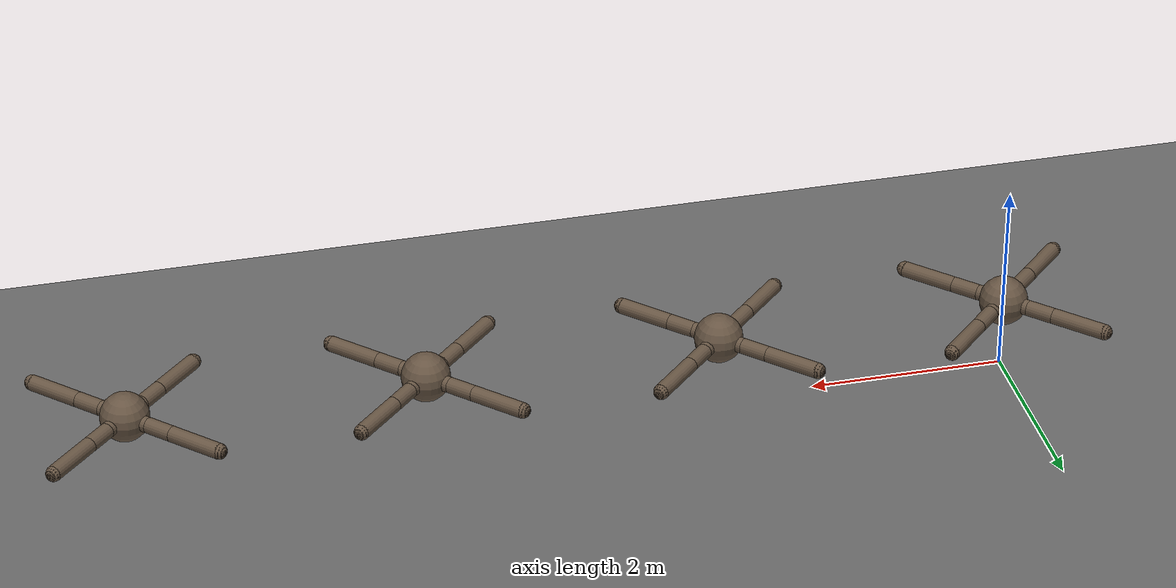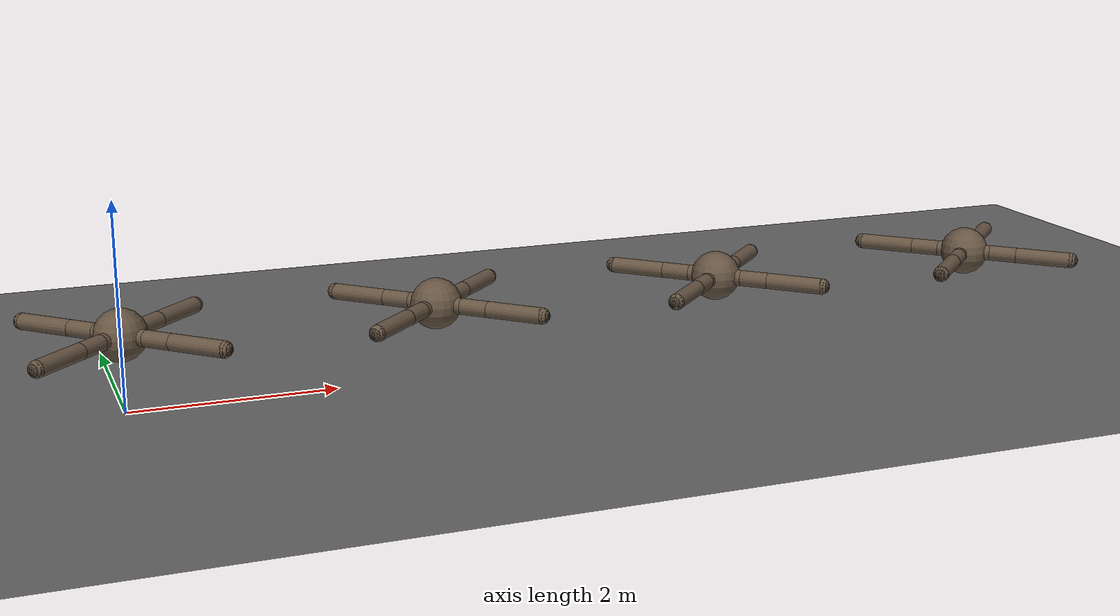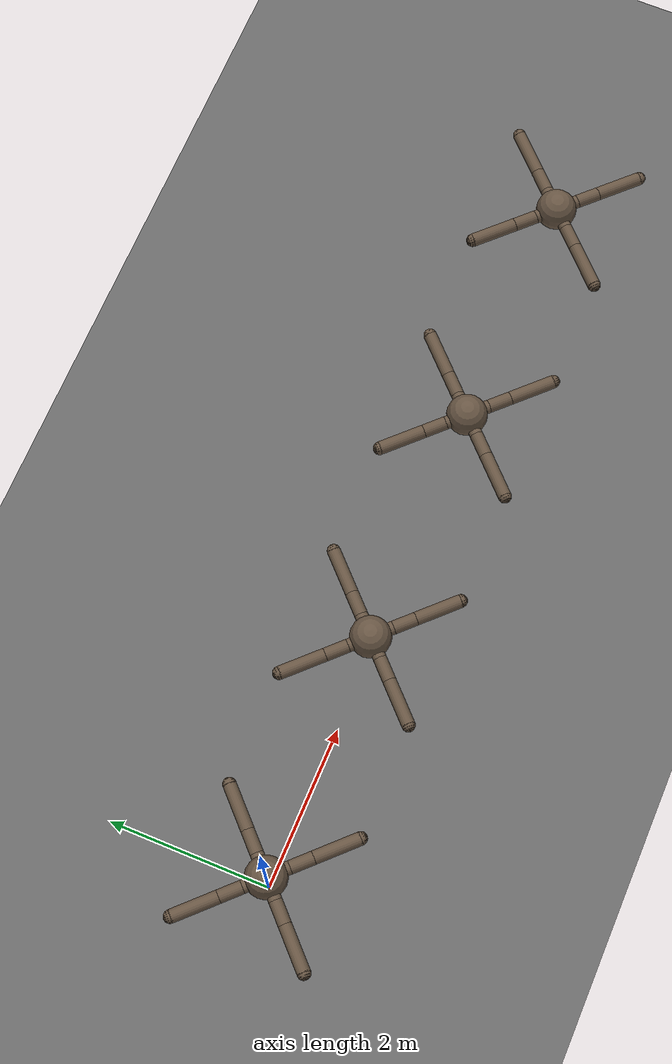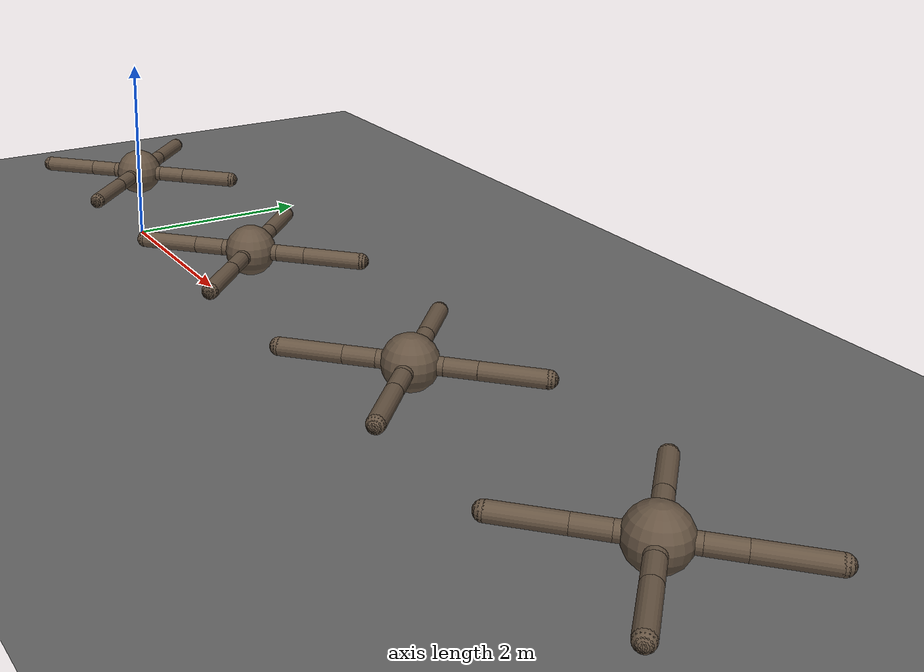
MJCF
<mujoco model="ant">
  <compiler angle="degree" coordinate="local" inertiafromgeom="true" />
  <option timestep="0.03" iterations="4" />
  <custom>

    <numeric data="0.0 0.0 0.55 1.0 0.0 0.0 0.0 0.0 1.0 0.0 -1.0 0.0 -1.0 0.0 1.0" name="init_qpos" />
    <numeric data="1000" name="constraint_limit_stiffness" />
    <numeric data="4000" name="constraint_stiffness" />
    <numeric data="10" name="constraint_ang_damping" />
    <numeric data="20" name="constraint_vel_damping" />
    <numeric data="0.5" name="joint_scale_pos" />
    <numeric data="0.2" name="joint_scale_ang" />
    <numeric data="0.0" name="ang_damping" />
    <numeric data="1" name="spring_mass_scale" />
    <numeric data="1" name="spring_inertia_scale" />
    <numeric data="15" name="solver_maxls" />
  </custom>
  <default>
    <joint armature="1" damping="1" limited="true" />
    <geom contype="0" conaffinity="0" condim="3" density="5.0" friction="1 0.5 0.5" rgba="0.4 0.33 0.26 1.0" />
  </default>
  <asset>
    <texture builtin="gradient" height="100" rgb1="1 1 1" rgb2="0 0 0" type="skybox" width="100" />
    <texture builtin="flat" height="1278" mark="cross" markrgb="1 1 1" name="texgeom" random="0.01" rgb1="0.8 0.6 0.4" rgb2="0.8 0.6 0.4" type="cube" width="127" />
    <texture builtin="checker" height="100" name="texplane" rgb1="0 0 0" rgb2="0.8 0.8 0.8" type="2d" width="100" />
    <material name="MatPlane" reflectance="0.5" shininess="1" specular="1" texrepeat="60 60" texture="texplane" />
    <material name="geom" texture="texgeom" texuniform="true" />
  </asset>
  <worldbody>
    <light cutoff="100" diffuse="1 1 1" dir="-0 0 -1.3" directional="true" exponent="1" pos="0 0 1.3" specular=".1 .1 .1" />
    <geom conaffinity="1" condim="3" material="MatPlane" name="floor" pos="0 0 0" size="40 40 40" type="plane" rgba="0.5 0.5 0.5 1.0" />
    <body name="torso_1" pos="0.0 0.0 0.75">
      <camera name="track_1" mode="trackcom" pos="0 -3 0.3" xyaxes="1 0 0 0 0 1" />
      <geom name="torso_geom_1" pos="0 0 0" size="0.25" type="sphere" />
      <joint armature="0" damping="0" limited="false" margin="0.01" name="root_1" pos="0 0 0" type="free" />
      <body name="front_left_leg_1" pos="0 0 0">
        <geom fromto="0.0 0.0 0.0 0.2 0.2 0.0" name="aux_1_geom_1" size="0.08" type="capsule" />
        <body name="aux_1_1" pos="0.2 0.2 0">
          <joint axis="0 0 1" name="hip_1_1" pos="0.0 0.0 0.0" range="-30 30" type="hinge" />
          <geom fromto="0.0 0.0 0.0 0.2 0.2 0.0" name="left_leg_geom_1" size="0.08" type="capsule" />
          <body pos="0.2 0.2 0">
            <joint axis="-1 1 0" name="ankle_1_1" pos="0.0 0.0 0.0" range="30 70" type="hinge" />
            <geom fromto="0.0 0.0 0.0 0.4 0.4 0.0" name="left_ankle_geom_1" size="0.08" type="capsule" />
            <geom name="left_foot_geom_1" contype="1" pos="0.4 0.4 0" size="0.08" type="sphere" mass="0" />
          </body>
        </body>
      </body>
      <body name="front_right_leg_1" pos="0 0 0">
        <geom fromto="0.0 0.0 0.0 -0.2 0.2 0.0" name="aux_2_geom_1" size="0.08" type="capsule" />
        <body name="aux_2_1" pos="-0.2 0.2 0">
          <joint axis="0 0 1" name="hip_2_1" pos="0.0 0.0 0.0" range="-30 30" type="hinge" />
          <geom fromto="0.0 0.0 0.0 -0.2 0.2 0.0" name="right_leg_geom_1" size="0.08" type="capsule" />
          <body pos="-0.2 0.2 0">
            <joint axis="1 1 0" name="ankle_2_1" pos="0.0 0.0 0.0" range="-70 -30" type="hinge" />
            <geom fromto="0.0 0.0 0.0 -0.4 0.4 0.0" name="right_ankle_geom_1" size="0.08" type="capsule" />
            <geom name="right_foot_geom_1" contype="1" pos="-0.4 0.4 0" size="0.08" type="sphere" mass="0" />
          </body>
        </body>
      </body>
      <body name="back_leg_1" pos="0 0 0">
        <geom fromto="0.0 0.0 0.0 -0.2 -0.2 0.0" name="aux_3_geom_1" size="0.08" type="capsule" />
        <body name="aux_3_1" pos="-0.2 -0.2 0">
          <joint axis="0 0 1" name="hip_3_1" pos="0.0 0.0 0.0" range="-30 30" type="hinge" />
          <geom fromto="0.0 0.0 0.0 -0.2 -0.2 0.0" name="back_leg_geom_1" size="0.08" type="capsule" />
          <body pos="-0.2 -0.2 0">
            <joint axis="-1 1 0" name="ankle_3_1" pos="0.0 0.0 0.0" range="-70 -30" type="hinge" />
            <geom fromto="0.0 0.0 0.0 -0.4 -0.4 0.0" name="third_ankle_geom_1" size="0.08" type="capsule" />
            <geom name="third_foot_geom_1" contype="1" pos="-0.4 -0.4 0" size="0.08" type="sphere" mass="0" />
          </body>
        </body>
      </body>
      <body name="right_back_leg_1" pos="0 0 0">
        <geom fromto="0.0 0.0 0.0 0.2 -0.2 0.0" name="aux_4_geom_1" size="0.08" type="capsule" />
        <body name="aux_4_1" pos="0.2 -0.2 0">
          <joint axis="0 0 1" name="hip_4_1" pos="0.0 0.0 0.0" range="-30 30" type="hinge" />
          <geom fromto="0.0 0.0 0.0 0.2 -0.2 0.0" name="rightback_leg_geom_1" size="0.08" type="capsule" />
          <body pos="0.2 -0.2 0">
            <joint axis="1 1 0" name="ankle_4_1" pos="0.0 0.0 0.0" range="30 70" type="hinge" />
            <geom fromto="0.0 0.0 0.0 0.4 -0.4 0.0" name="fourth_ankle_geom_1" size="0.08" type="capsule" />
            <geom name="fourth_foot_geom_1" contype="1" pos="0.4 -0.4 0" size="0.08" type="sphere" mass="0" />
          </body>
        </body>
      </body>
    </body><body name="torso_2" pos="3.0 0.0 0.75">
      <camera name="track_2" mode="trackcom" pos="0 -3 0.3" xyaxes="1 0 0 0 0 1" />
      <geom name="torso_geom_2" pos="0 0 0" size="0.25" type="sphere" />
      <joint armature="0" damping="0" limited="false" margin="0.01" name="root_2" pos="0 0 0" type="free" />
      <body name="front_left_leg_2" pos="0 0 0">
        <geom fromto="0.0 0.0 0.0 0.2 0.2 0.0" name="aux_1_geom_2" size="0.08" type="capsule" />
        <body name="aux_1_2" pos="0.2 0.2 0">
          <joint axis="0 0 1" name="hip_1_2" pos="0.0 0.0 0.0" range="-30 30" type="hinge" />
          <geom fromto="0.0 0.0 0.0 0.2 0.2 0.0" name="left_leg_geom_2" size="0.08" type="capsule" />
          <body pos="0.2 0.2 0">
            <joint axis="-1 1 0" name="ankle_1_2" pos="0.0 0.0 0.0" range="30 70" type="hinge" />
            <geom fromto="0.0 0.0 0.0 0.4 0.4 0.0" name="left_ankle_geom_2" size="0.08" type="capsule" />
            <geom name="left_foot_geom_2" contype="1" pos="0.4 0.4 0" size="0.08" type="sphere" mass="0" />
          </body>
        </body>
      </body>
      <body name="front_right_leg_2" pos="0 0 0">
        <geom fromto="0.0 0.0 0.0 -0.2 0.2 0.0" name="aux_2_geom_2" size="0.08" type="capsule" />
        <body name="aux_2_2" pos="-0.2 0.2 0">
          <joint axis="0 0 1" name="hip_2_2" pos="0.0 0.0 0.0" range="-30 30" type="hinge" />
          <geom fromto="0.0 0.0 0.0 -0.2 0.2 0.0" name="right_leg_geom_2" size="0.08" type="capsule" />
          <body pos="-0.2 0.2 0">
            <joint axis="1 1 0" name="ankle_2_2" pos="0.0 0.0 0.0" range="-70 -30" type="hinge" />
            <geom fromto="0.0 0.0 0.0 -0.4 0.4 0.0" name="right_ankle_geom_2" size="0.08" type="capsule" />
            <geom name="right_foot_geom_2" contype="1" pos="-0.4 0.4 0" size="0.08" type="sphere" mass="0" />
          </body>
        </body>
      </body>
      <body name="back_leg_2" pos="0 0 0">
        <geom fromto="0.0 0.0 0.0 -0.2 -0.2 0.0" name="aux_3_geom_2" size="0.08" type="capsule" />
        <body name="aux_3_2" pos="-0.2 -0.2 0">
          <joint axis="0 0 1" name="hip_3_2" pos="0.0 0.0 0.0" range="-30 30" type="hinge" />
          <geom fromto="0.0 0.0 0.0 -0.2 -0.2 0.0" name="back_leg_geom_2" size="0.08" type="capsule" />
          <body pos="-0.2 -0.2 0">
            <joint axis="-1 1 0" name="ankle_3_2" pos="0.0 0.0 0.0" range="-70 -30" type="hinge" />
            <geom fromto="0.0 0.0 0.0 -0.4 -0.4 0.0" name="third_ankle_geom_2" size="0.08" type="capsule" />
            <geom name="third_foot_geom_2" contype="1" pos="-0.4 -0.4 0" size="0.08" type="sphere" mass="0" />
          </body>
        </body>
      </body>
      <body name="right_back_leg_2" pos="0 0 0">
        <geom fromto="0.0 0.0 0.0 0.2 -0.2 0.0" name="aux_4_geom_2" size="0.08" type="capsule" />
        <body name="aux_4_2" pos="0.2 -0.2 0">
          <joint axis="0 0 1" name="hip_4_2" pos="0.0 0.0 0.0" range="-30 30" type="hinge" />
          <geom fromto="0.0 0.0 0.0 0.2 -0.2 0.0" name="rightback_leg_geom_2" size="0.08" type="capsule" />
          <body pos="0.2 -0.2 0">
            <joint axis="1 1 0" name="ankle_4_2" pos="0.0 0.0 0.0" range="30 70" type="hinge" />
            <geom fromto="0.0 0.0 0.0 0.4 -0.4 0.0" name="fourth_ankle_geom_2" size="0.08" type="capsule" />
            <geom name="fourth_foot_geom_2" contype="1" pos="0.4 -0.4 0" size="0.08" type="sphere" mass="0" />
          </body>
        </body>
      </body>
    </body><body name="torso_3" pos="6.0 0.0 0.75">
      <camera name="track_3" mode="trackcom" pos="0 -3 0.3" xyaxes="1 0 0 0 0 1" />
      <geom name="torso_geom_3" pos="0 0 0" size="0.25" type="sphere" />
      <joint armature="0" damping="0" limited="false" margin="0.01" name="root_3" pos="0 0 0" type="free" />
      <body name="front_left_leg_3" pos="0 0 0">
        <geom fromto="0.0 0.0 0.0 0.2 0.2 0.0" name="aux_1_geom_3" size="0.08" type="capsule" />
        <body name="aux_1_3" pos="0.2 0.2 0">
          <joint axis="0 0 1" name="hip_1_3" pos="0.0 0.0 0.0" range="-30 30" type="hinge" />
          <geom fromto="0.0 0.0 0.0 0.2 0.2 0.0" name="left_leg_geom_3" size="0.08" type="capsule" />
          <body pos="0.2 0.2 0">
            <joint axis="-1 1 0" name="ankle_1_3" pos="0.0 0.0 0.0" range="30 70" type="hinge" />
            <geom fromto="0.0 0.0 0.0 0.4 0.4 0.0" name="left_ankle_geom_3" size="0.08" type="capsule" />
            <geom name="left_foot_geom_3" contype="1" pos="0.4 0.4 0" size="0.08" type="sphere" mass="0" />
          </body>
        </body>
      </body>
      <body name="front_right_leg_3" pos="0 0 0">
        <geom fromto="0.0 0.0 0.0 -0.2 0.2 0.0" name="aux_2_geom_3" size="0.08" type="capsule" />
        <body name="aux_2_3" pos="-0.2 0.2 0">
          <joint axis="0 0 1" name="hip_2_3" pos="0.0 0.0 0.0" range="-30 30" type="hinge" />
          <geom fromto="0.0 0.0 0.0 -0.2 0.2 0.0" name="right_leg_geom_3" size="0.08" type="capsule" />
          <body pos="-0.2 0.2 0">
            <joint axis="1 1 0" name="ankle_2_3" pos="0.0 0.0 0.0" range="-70 -30" type="hinge" />
            <geom fromto="0.0 0.0 0.0 -0.4 0.4 0.0" name="right_ankle_geom_3" size="0.08" type="capsule" />
            <geom name="right_foot_geom_3" contype="1" pos="-0.4 0.4 0" size="0.08" type="sphere" mass="0" />
          </body>
        </body>
      </body>
      <body name="back_leg_3" pos="0 0 0">
        <geom fromto="0.0 0.0 0.0 -0.2 -0.2 0.0" name="aux_3_geom_3" size="0.08" type="capsule" />
        <body name="aux_3_3" pos="-0.2 -0.2 0">
          <joint axis="0 0 1" name="hip_3_3" pos="0.0 0.0 0.0" range="-30 30" type="hinge" />
          <geom fromto="0.0 0.0 0.0 -0.2 -0.2 0.0" name="back_leg_geom_3" size="0.08" type="capsule" />
          <body pos="-0.2 -0.2 0">
            <joint axis="-1 1 0" name="ankle_3_3" pos="0.0 0.0 0.0" range="-70 -30" type="hinge" />
            <geom fromto="0.0 0.0 0.0 -0.4 -0.4 0.0" name="third_ankle_geom_3" size="0.08" type="capsule" />
            <geom name="third_foot_geom_3" contype="1" pos="-0.4 -0.4 0" size="0.08" type="sphere" mass="0" />
          </body>
        </body>
      </body>
      <body name="right_back_leg_3" pos="0 0 0">
        <geom fromto="0.0 0.0 0.0 0.2 -0.2 0.0" name="aux_4_geom_3" size="0.08" type="capsule" />
        <body name="aux_4_3" pos="0.2 -0.2 0">
          <joint axis="0 0 1" name="hip_4_3" pos="0.0 0.0 0.0" range="-30 30" type="hinge" />
          <geom fromto="0.0 0.0 0.0 0.2 -0.2 0.0" name="rightback_leg_geom_3" size="0.08" type="capsule" />
          <body pos="0.2 -0.2 0">
            <joint axis="1 1 0" name="ankle_4_3" pos="0.0 0.0 0.0" range="30 70" type="hinge" />
            <geom fromto="0.0 0.0 0.0 0.4 -0.4 0.0" name="fourth_ankle_geom_3" size="0.08" type="capsule" />
            <geom name="fourth_foot_geom_3" contype="1" pos="0.4 -0.4 0" size="0.08" type="sphere" mass="0" />
          </body>
        </body>
      </body>
    </body><body name="torso_4" pos="9.0 0.0 0.75">
      <camera name="track_4" mode="trackcom" pos="0 -3 0.3" xyaxes="1 0 0 0 0 1" />
      <geom name="torso_geom_4" pos="0 0 0" size="0.25" type="sphere" />
      <joint armature="0" damping="0" limited="false" margin="0.01" name="root_4" pos="0 0 0" type="free" />
      <body name="front_left_leg_4" pos="0 0 0">
        <geom fromto="0.0 0.0 0.0 0.2 0.2 0.0" name="aux_1_geom_4" size="0.08" type="capsule" />
        <body name="aux_1_4" pos="0.2 0.2 0">
          <joint axis="0 0 1" name="hip_1_4" pos="0.0 0.0 0.0" range="-30 30" type="hinge" />
          <geom fromto="0.0 0.0 0.0 0.2 0.2 0.0" name="left_leg_geom_4" size="0.08" type="capsule" />
          <body pos="0.2 0.2 0">
            <joint axis="-1 1 0" name="ankle_1_4" pos="0.0 0.0 0.0" range="30 70" type="hinge" />
            <geom fromto="0.0 0.0 0.0 0.4 0.4 0.0" name="left_ankle_geom_4" size="0.08" type="capsule" />
            <geom name="left_foot_geom_4" contype="1" pos="0.4 0.4 0" size="0.08" type="sphere" mass="0" />
          </body>
        </body>
      </body>
      <body name="front_right_leg_4" pos="0 0 0">
        <geom fromto="0.0 0.0 0.0 -0.2 0.2 0.0" name="aux_2_geom_4" size="0.08" type="capsule" />
        <body name="aux_2_4" pos="-0.2 0.2 0">
          <joint axis="0 0 1" name="hip_2_4" pos="0.0 0.0 0.0" range="-30 30" type="hinge" />
          <geom fromto="0.0 0.0 0.0 -0.2 0.2 0.0" name="right_leg_geom_4" size="0.08" type="capsule" />
          <body pos="-0.2 0.2 0">
            <joint axis="1 1 0" name="ankle_2_4" pos="0.0 0.0 0.0" range="-70 -30" type="hinge" />
            <geom fromto="0.0 0.0 0.0 -0.4 0.4 0.0" name="right_ankle_geom_4" size="0.08" type="capsule" />
            <geom name="right_foot_geom_4" contype="1" pos="-0.4 0.4 0" size="0.08" type="sphere" mass="0" />
          </body>
        </body>
      </body>
      <body name="back_leg_4" pos="0 0 0">
        <geom fromto="0.0 0.0 0.0 -0.2 -0.2 0.0" name="aux_3_geom_4" size="0.08" type="capsule" />
        <body name="aux_3_4" pos="-0.2 -0.2 0">
          <joint axis="0 0 1" name="hip_3_4" pos="0.0 0.0 0.0" range="-30 30" type="hinge" />
          <geom fromto="0.0 0.0 0.0 -0.2 -0.2 0.0" name="back_leg_geom_4" size="0.08" type="capsule" />
          <body pos="-0.2 -0.2 0">
            <joint axis="-1 1 0" name="ankle_3_4" pos="0.0 0.0 0.0" range="-70 -30" type="hinge" />
            <geom fromto="0.0 0.0 0.0 -0.4 -0.4 0.0" name="third_ankle_geom_4" size="0.08" type="capsule" />
            <geom name="third_foot_geom_4" contype="1" pos="-0.4 -0.4 0" size="0.08" type="sphere" mass="0" />
          </body>
        </body>
      </body>
      <body name="right_back_leg_4" pos="0 0 0">
        <geom fromto="0.0 0.0 0.0 0.2 -0.2 0.0" name="aux_4_geom_4" size="0.08" type="capsule" />
        <body name="aux_4_4" pos="0.2 -0.2 0">
          <joint axis="0 0 1" name="hip_4_4" pos="0.0 0.0 0.0" range="-30 30" type="hinge" />
          <geom fromto="0.0 0.0 0.0 0.2 -0.2 0.0" name="rightback_leg_geom_4" size="0.08" type="capsule" />
          <body pos="0.2 -0.2 0">
            <joint axis="1 1 0" name="ankle_4_4" pos="0.0 0.0 0.0" range="30 70" type="hinge" />
            <geom fromto="0.0 0.0 0.0 0.4 -0.4 0.0" name="fourth_ankle_geom_4" size="0.08" type="capsule" />
            <geom name="fourth_foot_geom_4" contype="1" pos="0.4 -0.4 0" size="0.08" type="sphere" mass="0" />
          </body>
        </body>
      </body>
    </body></worldbody>
  <actuator>
    <motor ctrllimited="true" ctrlrange="-1.0 1.0" joint="hip_4_1" gear="150" /><motor ctrllimited="true" ctrlrange="-1.0 1.0" joint="ankle_4_1" gear="150" /><motor ctrllimited="true" ctrlrange="-1.0 1.0" joint="hip_1_1" gear="150" /><motor ctrllimited="true" ctrlrange="-1.0 1.0" joint="ankle_1_1" gear="150" /><motor ctrllimited="true" ctrlrange="-1.0 1.0" joint="hip_2_1" gear="150" /><motor ctrllimited="true" ctrlrange="-1.0 1.0" joint="ankle_2_1" gear="150" /><motor ctrllimited="true" ctrlrange="-1.0 1.0" joint="hip_3_1" gear="150" /><motor ctrllimited="true" ctrlrange="-1.0 1.0" joint="ankle_3_1" gear="150" /><motor ctrllimited="true" ctrlrange="-1.0 1.0" joint="hip_4_2" gear="150" /><motor ctrllimited="true" ctrlrange="-1.0 1.0" joint="ankle_4_2" gear="150" /><motor ctrllimited="true" ctrlrange="-1.0 1.0" joint="hip_1_2" gear="150" /><motor ctrllimited="true" ctrlrange="-1.0 1.0" joint="ankle_1_2" gear="150" /><motor ctrllimited="true" ctrlrange="-1.0 1.0" joint="hip_2_2" gear="150" /><motor ctrllimited="true" ctrlrange="-1.0 1.0" joint="ankle_2_2" gear="150" /><motor ctrllimited="true" ctrlrange="-1.0 1.0" joint="hip_3_2" gear="150" /><motor ctrllimited="true" ctrlrange="-1.0 1.0" joint="ankle_3_2" gear="150" /><motor ctrllimited="true" ctrlrange="-1.0 1.0" joint="hip_4_3" gear="150" /><motor ctrllimited="true" ctrlrange="-1.0 1.0" joint="ankle_4_3" gear="150" /><motor ctrllimited="true" ctrlrange="-1.0 1.0" joint="hip_1_3" gear="150" /><motor ctrllimited="true" ctrlrange="-1.0 1.0" joint="ankle_1_3" gear="150" /><motor ctrllimited="true" ctrlrange="-1.0 1.0" joint="hip_2_3" gear="150" /><motor ctrllimited="true" ctrlrange="-1.0 1.0" joint="ankle_2_3" gear="150" /><motor ctrllimited="true" ctrlrange="-1.0 1.0" joint="hip_3_3" gear="150" /><motor ctrllimited="true" ctrlrange="-1.0 1.0" joint="ankle_3_3" gear="150" /><motor ctrllimited="true" ctrlrange="-1.0 1.0" joint="hip_4_4" gear="150" /><motor ctrllimited="true" ctrlrange="-1.0 1.0" joint="ankle_4_4" gear="150" /><motor ctrllimited="true" ctrlrange="-1.0 1.0" joint="hip_1_4" gear="150" /><motor ctrllimited="true" ctrlrange="-1.0 1.0" joint="ankle_1_4" gear="150" /><motor ctrllimited="true" ctrlrange="-1.0 1.0" joint="hip_2_4" gear="150" /><motor ctrllimited="true" ctrlrange="-1.0 1.0" joint="ankle_2_4" gear="150" /><motor ctrllimited="true" ctrlrange="-1.0 1.0" joint="hip_3_4" gear="150" /><motor ctrllimited="true" ctrlrange="-1.0 1.0" joint="ankle_3_4" gear="150" /></actuator>
</mujoco>
